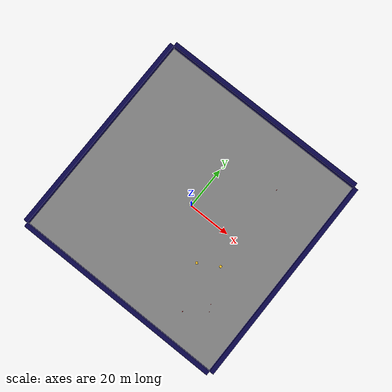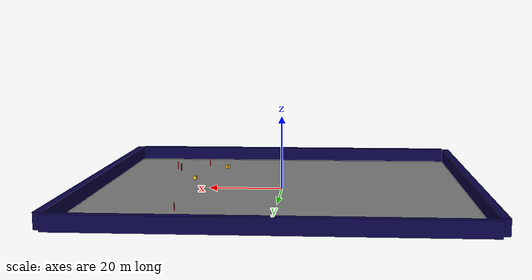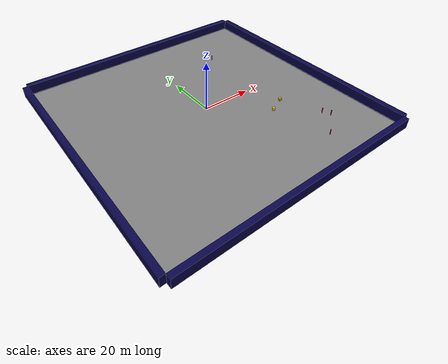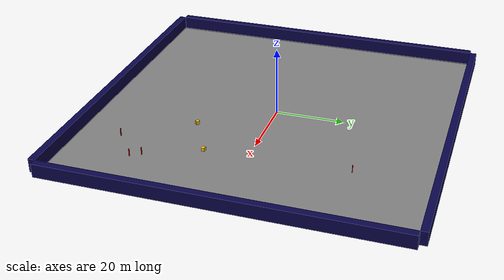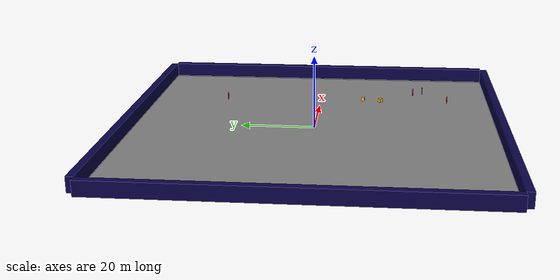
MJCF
<mujoco model="unnamed_model">
  <default>
    <default class="/" />
    <default class="border/" />
    <default class="border_1/" />
    <default class="border_2/" />
    <default class="border_3/" />
    <default class="placeholder/" />
    <default class="agent/" />
    <default class="tree0/" />
    <default class="tree1/" />
    <default class="tree2/" />
    <default class="tree3/" />
  </default>
  <worldbody>
    <body name="border/">
      <body name="border/border" pos="0 51 2">
        <geom name="border/border_geom" class="border/" type="box" size="50 1 2" rgba="0.035000000000000003 0.016 0.28999999999999998 1" />
      </body>
    </body>
    <body name="border_1/">
      <body name="border_1/border" pos="0 -51 2">
        <geom name="border_1/border_geom" class="border_1/" type="box" size="50 1 2" rgba="0.035000000000000003 0.016 0.28999999999999998 1" />
      </body>
    </body>
    <body name="border_2/">
      <body name="border_2/border" pos="51 0 2">
        <geom name="border_2/border_geom" class="border_2/" type="box" size="1 50 2" rgba="0.035000000000000003 0.016 0.28999999999999998 1" />
      </body>
    </body>
    <body name="border_3/">
      <body name="border_3/border" pos="-51 0 2">
        <geom name="border_3/border_geom" class="border_3/" type="box" size="1 50 2" rgba="0.035000000000000003 0.016 0.28999999999999998 1" />
      </body>
    </body>
    <body euler="0 0 133.98634259817823" name="placeholder/">
      <joint name="placeholder/boxagent_freeJoint/" class="/" type="free" />
      <body name="placeholder/placeholder" pos="-25 0 3" euler="0 0 0">
        <geom name="placeholder/boxagent_geom" class="placeholder/" type="box" size="0.5 0.5 0.5" rgba="0.94899999999999995 0.74509999999999998 0.1333 1" euler="0 0 0" />
      </body>
    </body>
    <body euler="0 0 173.85170985012644" name="agent/">
      <joint name="agent/boxagent_freeJoint/" class="/" type="free" />
      <body name="agent/agent" pos="-27.581300000000002 9.7642000000000024 0.5" euler="0 0 0">
        <geom name="agent/boxagent_geom" class="agent/" type="box" size="0.5 0.5 0.5" rgba="0.94899999999999995 0.74509999999999998 0.1333 1" euler="0 0 0" />
      </body>
    </body>
    <body name="tree0/">
      <body name="tree0/tree0" pos="25.6004 -37.857599999999998 0.10000000000000001" euler="0 0 -99.614690668822135">
        <geom name="tree0/tree_geom" class="tree0/" type="box" size="0.10000000000000001 0.10000000000000001 2" rgba="1 0 0 1" />
      </body>
    </body>
    <body name="tree1/">
      <body name="tree1/tree1" pos="34.758650000000003 -30.7942 0.10000000000000001" euler="0 0 -100.36378775807799">
        <geom name="tree1/tree_geom" class="tree1/" type="box" size="0.10000000000000001 0.10000000000000001 2" rgba="1 0 0 1" />
      </body>
    </body>
    <body name="tree2/">
      <body name="tree2/tree2" pos="33.19455 -27.8887 0.10000000000000001" euler="0 0 -9.3518106815504041">
        <geom name="tree2/tree_geom" class="tree2/" type="box" size="0.10000000000000001 0.10000000000000001 2" rgba="1 0 0 1" />
      </body>
    </body>
    <body name="tree3/">
      <body name="tree3/tree3" pos="24.693200000000001 28.390600000000006 0.10000000000000001" euler="0 0 -85.254465196558513">
        <geom name="tree3/tree_geom" class="tree3/" type="box" size="0.10000000000000001 0.10000000000000001 2" rgba="1 0 0 1" />
      </body>
    </body>
    <geom name="base_plane" class="/" type="plane" size="50 50 0.10000000000000001" />
  </worldbody>
</mujoco>
